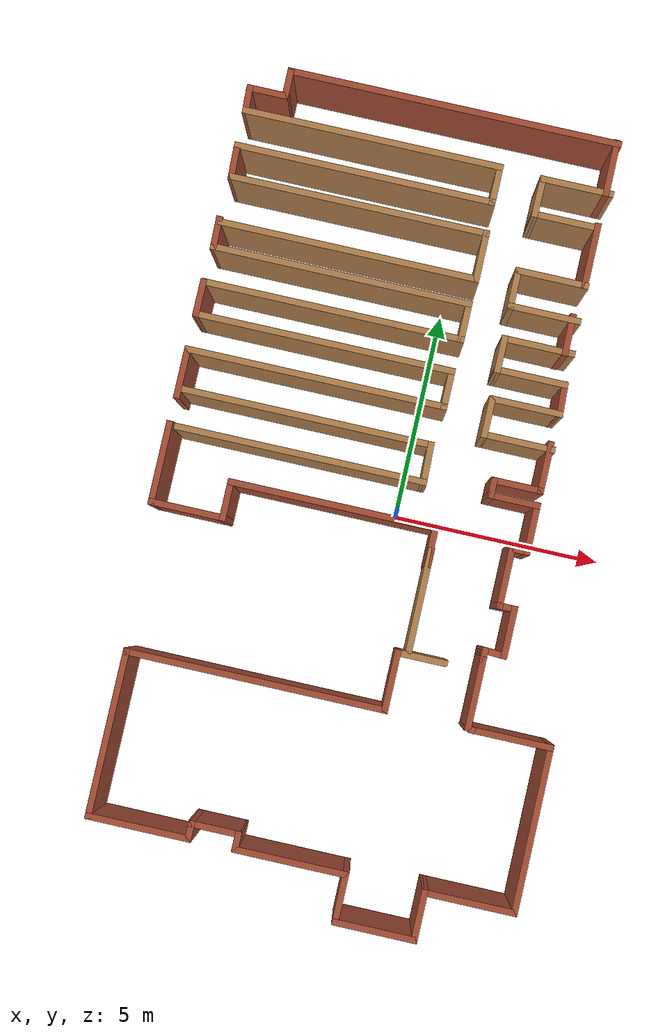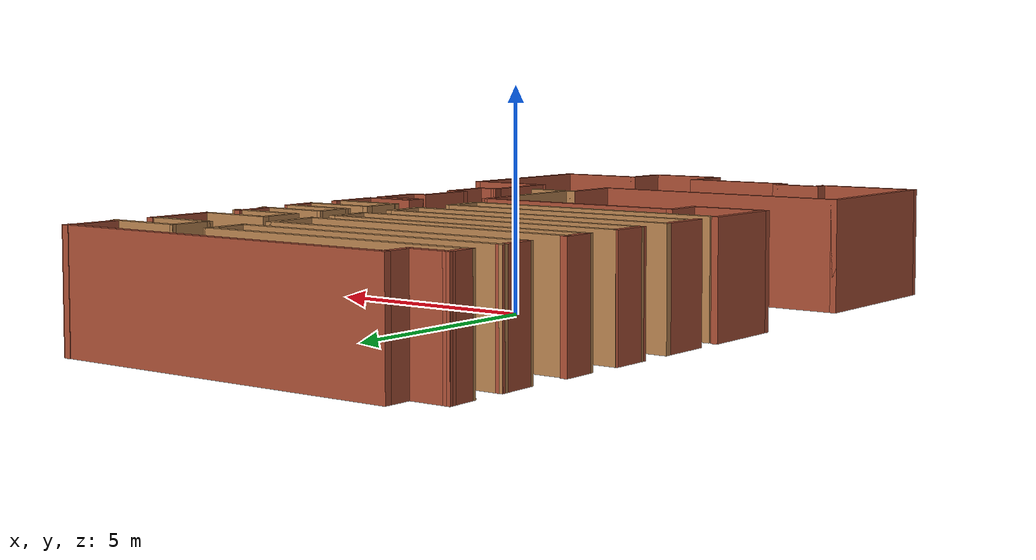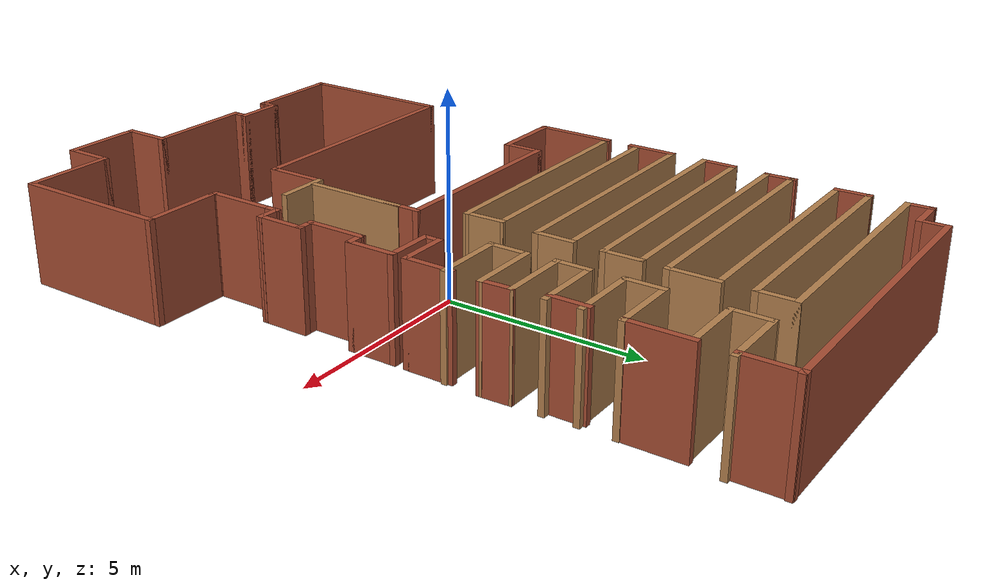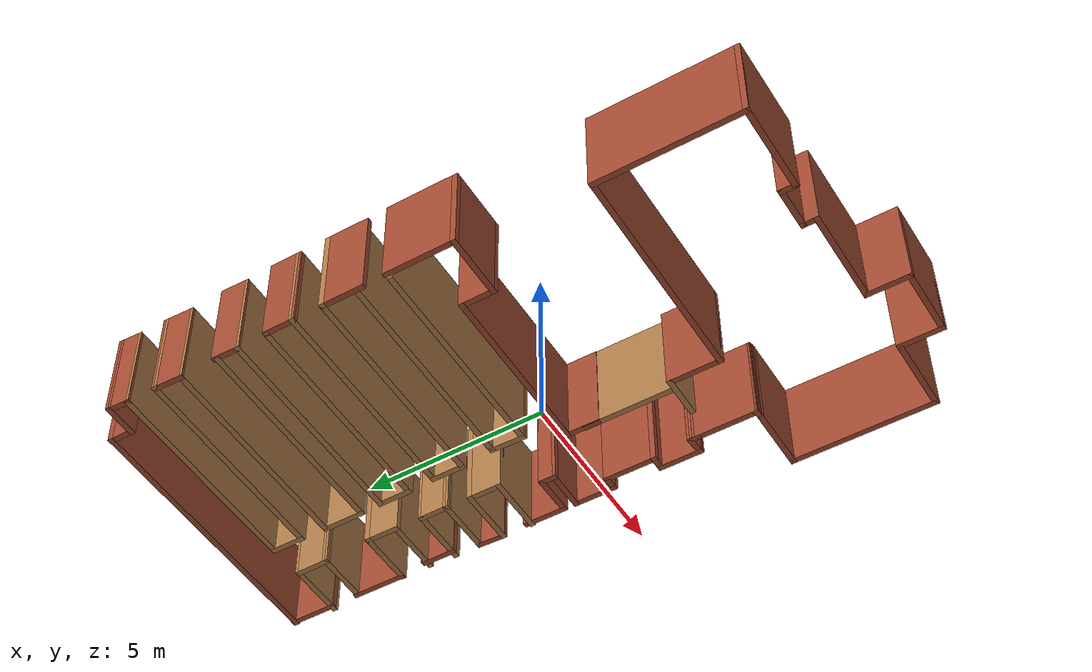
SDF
<?xml version='1.0'?>
<sdf version='1.7'>
  <model name='F1L3'>
    <pose>-0.483748 0.052181 0 0 -0 0</pose>
    <link name='Wall_0'>
      <collision name='Wall_0_Collision'>
        <geometry>
          <box>
            <size>2.5 0.15 2.5</size>
          </box>
        </geometry>
        <pose>0 0 1.25 0 -0 0</pose>
      </collision>
      <visual name='Wall_0_Visual'>
        <pose>0 0 1.25 0 -0 0</pose>
        <geometry>
          <box>
            <size>2.5 0.15 2.5</size>
          </box>
        </geometry>
        <material>
          <script>
            <uri>file://media/materials/scripts/gazebo.material</uri>
            <name>Gazebo/Bricks</name>
          </script>
          <ambient>1 1 1 1</ambient>
        </material>
        <meta>
          <layer>0</layer>
        </meta>
      </visual>
      <pose>-3.71368 -8.40226 0 0 -0 0</pose>
    </link>
    <link name='Wall_10'>
      <collision name='Wall_10_Collision'>
        <geometry>
          <box>
            <size>4 0.15 2.5</size>
          </box>
        </geometry>
        <pose>0 0 1.25 0 -0 0</pose>
      </collision>
      <visual name='Wall_10_Visual'>
        <pose>0 0 1.25 0 -0 0</pose>
        <geometry>
          <box>
            <size>4 0.15 2.5</size>
          </box>
        </geometry>
        <material>
          <script>
            <uri>file://media/materials/scripts/gazebo.material</uri>
            <name>Gazebo/Bricks</name>
          </script>
          <ambient>1 1 1 1</ambient>
        </material>
        <meta>
          <layer>0</layer>
        </meta>
      </visual>
      <pose>5.11132 -6.47726 0 0 -0 1.5708</pose>
    </link>
    <link name='Wall_100'>
      <collision name='Wall_100_Collision'>
        <geometry>
          <box>
            <size>1.75 0.15 2.5</size>
          </box>
        </geometry>
        <pose>0 0 1.25 0 -0 0</pose>
      </collision>
      <visual name='Wall_100_Visual'>
        <pose>0 0 1.25 0 -0 0</pose>
        <geometry>
          <box>
            <size>1.75 0.15 2.5</size>
          </box>
        </geometry>
        <material>
          <script>
            <uri>file://media/materials/scripts/gazebo.material</uri>
            <name>Gazebo/Wood</name>
          </script>
          <ambient>1 1 1 1</ambient>
        </material>
        <meta>
          <layer>0</layer>
        </meta>
      </visual>
      <pose>2.86493 2.15376 0 0 -0 0</pose>
    </link>
    <link name='Wall_102'>
      <collision name='Wall_102_Collision'>
        <geometry>
          <box>
            <size>1.75 0.15 2.5</size>
          </box>
        </geometry>
        <pose>0 0 1.25 0 -0 0</pose>
      </collision>
      <visual name='Wall_102_Visual'>
        <pose>0 0 1.25 0 -0 0</pose>
        <geometry>
          <box>
            <size>1.75 0.15 2.5</size>
          </box>
        </geometry>
        <material>
          <script>
            <uri>file://media/materials/scripts/gazebo.material</uri>
            <name>Gazebo/Wood</name>
          </script>
          <ambient>1 1 1 1</ambient>
        </material>
        <meta>
          <layer>0</layer>
        </meta>
      </visual>
      <pose>2.83833 4.44017 0 0 -0 0</pose>
    </link>
    <link name='Wall_104'>
      <collision name='Wall_104_Collision'>
        <geometry>
          <box>
            <size>1.75 0.15 2.5</size>
          </box>
        </geometry>
        <pose>0 0 1.25 0 -0 0</pose>
      </collision>
      <visual name='Wall_104_Visual'>
        <pose>0 0 1.25 0 -0 0</pose>
        <geometry>
          <box>
            <size>1.75 0.15 2.5</size>
          </box>
        </geometry>
        <material>
          <script>
            <uri>file://media/materials/scripts/gazebo.material</uri>
            <name>Gazebo/Wood</name>
          </script>
          <ambient>1 1 1 1</ambient>
        </material>
        <meta>
          <layer>0</layer>
        </meta>
      </visual>
      <pose>2.83434 3.69537 0 0 -0 3.14159</pose>
    </link>
    <link name='Wall_105'>
      <collision name='Wall_105_Collision'>
        <geometry>
          <box>
            <size>0.894816 0.15 2.5</size>
          </box>
        </geometry>
        <pose>0 0 1.25 0 -0 0</pose>
      </collision>
      <visual name='Wall_105_Visual'>
        <pose>0 0 1.25 0 -0 0</pose>
        <geometry>
          <box>
            <size>0.894816 0.15 2.5</size>
          </box>
        </geometry>
        <material>
          <script>
            <uri>file://media/materials/scripts/gazebo.material</uri>
            <name>Gazebo/Wood</name>
          </script>
          <ambient>1 1 1 1</ambient>
        </material>
        <meta>
          <layer>0</layer>
        </meta>
      </visual>
      <pose>2.03634 4.06777 0 0 -0 1.56544</pose>
    </link>
    <link name='Wall_109'>
      <collision name='Wall_109_Collision'>
        <geometry>
          <box>
            <size>1.75 0.15 2.5</size>
          </box>
        </geometry>
        <pose>0 0 1.25 0 -0 0</pose>
      </collision>
      <visual name='Wall_109_Visual'>
        <pose>0 0 1.25 0 -0 0</pose>
        <geometry>
          <box>
            <size>1.75 0.15 2.5</size>
          </box>
        </geometry>
        <material>
          <script>
            <uri>file://media/materials/scripts/gazebo.material</uri>
            <name>Gazebo/Wood</name>
          </script>
          <ambient>1 1 1 1</ambient>
        </material>
        <meta>
          <layer>0</layer>
        </meta>
      </visual>
      <pose>2.80774 6.06279 0 0 -0 3.14159</pose>
    </link>
    <link name='Wall_11'>
      <collision name='Wall_11_Collision'>
        <geometry>
          <box>
            <size>2 0.15 2.5</size>
          </box>
        </geometry>
        <pose>0 0 1.25 0 -0 0</pose>
      </collision>
      <visual name='Wall_11_Visual'>
        <pose>0 0 1.25 0 -0 0</pose>
        <geometry>
          <box>
            <size>2 0.15 2.5</size>
          </box>
        </geometry>
        <material>
          <script>
            <uri>file://media/materials/scripts/gazebo.material</uri>
            <name>Gazebo/Bricks</name>
          </script>
          <ambient>1 1 1 1</ambient>
        </material>
        <meta>
          <layer>0</layer>
        </meta>
      </visual>
      <pose>4.18632 -4.55226 0 0 -0 3.14159</pose>
    </link>
    <link name='Wall_110'>
      <collision name='Wall_110_Collision'>
        <geometry>
          <box>
            <size>1 0.15 2.5</size>
          </box>
        </geometry>
        <pose>0 0 1.25 0 -0 0</pose>
      </collision>
      <visual name='Wall_110_Visual'>
        <pose>0 0 1.25 0 -0 0</pose>
        <geometry>
          <box>
            <size>1 0.15 2.5</size>
          </box>
        </geometry>
        <material>
          <script>
            <uri>file://media/materials/scripts/gazebo.material</uri>
            <name>Gazebo/Wood</name>
          </script>
          <ambient>1 1 1 1</ambient>
        </material>
        <meta>
          <layer>0</layer>
        </meta>
      </visual>
      <pose>2.00774 5.63779 0 0 -0 -1.5708</pose>
    </link>
    <link name='Wall_111'>
      <collision name='Wall_111_Collision'>
        <geometry>
          <box>
            <size>1.75 0.15 2.5</size>
          </box>
        </geometry>
        <pose>0 0 1.25 0 -0 0</pose>
      </collision>
      <visual name='Wall_111_Visual'>
        <pose>0 0 1.25 0 -0 0</pose>
        <geometry>
          <box>
            <size>1.75 0.15 2.5</size>
          </box>
        </geometry>
        <material>
          <script>
            <uri>file://media/materials/scripts/gazebo.material</uri>
            <name>Gazebo/Wood</name>
          </script>
          <ambient>1 1 1 1</ambient>
        </material>
        <meta>
          <layer>0</layer>
        </meta>
      </visual>
      <pose>2.80774 5.21279 0 0 -0 0</pose>
    </link>
    <link name='Wall_114'>
      <collision name='Wall_114_Collision'>
        <geometry>
          <box>
            <size>2 0.15 2.5</size>
          </box>
        </geometry>
        <pose>0 0 1.25 0 -0 0</pose>
      </collision>
      <visual name='Wall_114_Visual'>
        <pose>0 0 1.25 0 -0 0</pose>
        <geometry>
          <box>
            <size>2 0.15 2.5</size>
          </box>
        </geometry>
        <material>
          <script>
            <uri>file://media/materials/scripts/gazebo.material</uri>
            <name>Gazebo/Bricks</name>
          </script>
          <ambient>1 1 1 1</ambient>
        </material>
        <meta>
          <layer>0</layer>
        </meta>
      </visual>
      <pose>-5.11132 -0.137543 0 0 -0 1.5708</pose>
    </link>
    <link name='Wall_116'>
      <collision name='Wall_116_Collision'>
        <geometry>
          <box>
            <size>1.25 0.15 2.5</size>
          </box>
        </geometry>
        <pose>0 0 1.25 0 -0 0</pose>
      </collision>
      <visual name='Wall_116_Visual'>
        <pose>0 0 1.25 0 -0 0</pose>
        <geometry>
          <box>
            <size>1.25 0.15 2.5</size>
          </box>
        </geometry>
        <material>
          <script>
            <uri>file://media/materials/scripts/gazebo.material</uri>
            <name>Gazebo/Bricks</name>
          </script>
          <ambient>1 1 1 1</ambient>
        </material>
        <meta>
          <layer>0</layer>
        </meta>
      </visual>
      <pose>-5.09052 2.02937 0 0 -0 -1.5708</pose>
    </link>
    <link name='Wall_119'>
      <collision name='Wall_119_Collision'>
        <geometry>
          <box>
            <size>0.91051 0.15 2.5</size>
          </box>
        </geometry>
        <pose>0 0 1.25 0 -0 0</pose>
      </collision>
      <visual name='Wall_119_Visual'>
        <pose>0 0 1.25 0 -0 0</pose>
        <geometry>
          <box>
            <size>0.91051 0.15 2.5</size>
          </box>
        </geometry>
        <material>
          <script>
            <uri>file://media/materials/scripts/gazebo.material</uri>
            <name>Gazebo/Bricks</name>
          </script>
          <ambient>1 1 1 1</ambient>
        </material>
        <meta>
          <layer>0</layer>
        </meta>
      </visual>
      <pose>-5.08843 3.80946 0 0 -0 1.56528</pose>
    </link>
    <link name='Wall_12'>
      <collision name='Wall_12_Collision'>
        <geometry>
          <box>
            <size>0.25 0.15 2.5</size>
          </box>
        </geometry>
        <pose>0 0 1.25 0 -0 0</pose>
      </collision>
      <visual name='Wall_12_Visual'>
        <pose>0 0 1.25 0 -0 0</pose>
        <geometry>
          <box>
            <size>0.25 0.15 2.5</size>
          </box>
        </geometry>
        <material>
          <script>
            <uri>file://media/materials/scripts/gazebo.material</uri>
            <name>Gazebo/Bricks</name>
          </script>
          <ambient>1 1 1 1</ambient>
        </material>
        <meta>
          <layer>0</layer>
        </meta>
      </visual>
      <pose>3.21303 -4.53932 0 0 -0 2.87979</pose>
    </link>
    <link name='Wall_121'>
      <collision name='Wall_121_Collision'>
        <geometry>
          <box>
            <size>0.803926 0.15 2.5</size>
          </box>
        </geometry>
        <pose>0 0 1.25 0 -0 0</pose>
      </collision>
      <visual name='Wall_121_Visual'>
        <pose>0 0 1.25 0 -0 0</pose>
        <geometry>
          <box>
            <size>0.803926 0.15 2.5</size>
          </box>
        </geometry>
        <material>
          <script>
            <uri>file://media/materials/scripts/gazebo.material</uri>
            <name>Gazebo/Bricks</name>
          </script>
          <ambient>1 1 1 1</ambient>
        </material>
        <meta>
          <layer>0</layer>
        </meta>
      </visual>
      <pose>-5.05281 5.37887 0 0 -0 1.59198</pose>
    </link>
    <link name='Wall_123'>
      <collision name='Wall_123_Collision'>
        <geometry>
          <box>
            <size>0.896486 0.15 2.5</size>
          </box>
        </geometry>
        <pose>0 0 1.25 0 -0 0</pose>
      </collision>
      <visual name='Wall_123_Visual'>
        <pose>0 0 1.25 0 -0 0</pose>
        <geometry>
          <box>
            <size>0.896486 0.15 2.5</size>
          </box>
        </geometry>
        <material>
          <script>
            <uri>file://media/materials/scripts/gazebo.material</uri>
            <name>Gazebo/Bricks</name>
          </script>
          <ambient>1 1 1 1</ambient>
        </material>
        <meta>
          <layer>0</layer>
        </meta>
      </visual>
      <pose>-5.02402 7.1274 0 0 -0 1.60644</pose>
    </link>
    <link name='Wall_125'>
      <collision name='Wall_125_Collision'>
        <geometry>
          <box>
            <size>0.687455 0.15 2.5</size>
          </box>
        </geometry>
        <pose>0 0 1.25 0 -0 0</pose>
      </collision>
      <visual name='Wall_125_Visual'>
        <pose>0 0 1.25 0 -0 0</pose>
        <geometry>
          <box>
            <size>0.687455 0.15 2.5</size>
          </box>
        </geometry>
        <material>
          <script>
            <uri>file://media/materials/scripts/gazebo.material</uri>
            <name>Gazebo/Bricks</name>
          </script>
          <ambient>1 1 1 1</ambient>
        </material>
        <meta>
          <layer>0</layer>
        </meta>
      </visual>
      <pose>-5.04772 8.61893 0 0 -0 1.60951</pose>
    </link>
    <link name='Wall_127'>
      <collision name='Wall_127_Collision'>
        <geometry>
          <box>
            <size>0.842281 0.15 2.5</size>
          </box>
        </geometry>
        <pose>0 0 1.25 0 -0 0</pose>
      </collision>
      <visual name='Wall_127_Visual'>
        <pose>0 0 1.25 0 -0 0</pose>
        <geometry>
          <box>
            <size>0.842281 0.15 2.5</size>
          </box>
        </geometry>
        <material>
          <script>
            <uri>file://media/materials/scripts/gazebo.material</uri>
            <name>Gazebo/Bricks</name>
          </script>
          <ambient>1 1 1 1</ambient>
        </material>
        <meta>
          <layer>0</layer>
        </meta>
      </visual>
      <pose>3.64964 3.34957 0 0 -0 1.61499</pose>
    </link>
    <link name='Wall_129'>
      <collision name='Wall_129_Collision'>
        <geometry>
          <box>
            <size>1.00121 0.15 2.5</size>
          </box>
        </geometry>
        <pose>0 0 1.25 0 -0 0</pose>
      </collision>
      <visual name='Wall_129_Visual'>
        <pose>0 0 1.25 0 -0 0</pose>
        <geometry>
          <box>
            <size>1.00121 0.15 2.5</size>
          </box>
        </geometry>
        <material>
          <script>
            <uri>file://media/materials/scripts/gazebo.material</uri>
            <name>Gazebo/Bricks</name>
          </script>
          <ambient>1 1 1 1</ambient>
        </material>
        <meta>
          <layer>0</layer>
        </meta>
      </visual>
      <pose>3.47893 4.85455 0 0 -0 1.5708</pose>
    </link>
    <link name='Wall_13'>
      <collision name='Wall_13_Collision'>
        <geometry>
          <box>
            <size>1.75 0.15 2.5</size>
          </box>
        </geometry>
        <pose>0 0 1.25 0 -0 0</pose>
      </collision>
      <visual name='Wall_13_Visual'>
        <pose>0 0 1.25 0 -0 0</pose>
        <geometry>
          <box>
            <size>1.75 0.15 2.5</size>
          </box>
        </geometry>
        <material>
          <script>
            <uri>file://media/materials/scripts/gazebo.material</uri>
            <name>Gazebo/Bricks</name>
          </script>
          <ambient>1 1 1 1</ambient>
        </material>
        <meta>
          <layer>0</layer>
        </meta>
      </visual>
      <pose>3.16473 -3.72637 0 0 -0 1.5708</pose>
    </link>
    <link name='Wall_131'>
      <collision name='Wall_131_Collision'>
        <geometry>
          <box>
            <size>1.55981 0.15 2.5</size>
          </box>
        </geometry>
        <pose>0 0 1.25 0 -0 0</pose>
      </collision>
      <visual name='Wall_131_Visual'>
        <pose>0 0 1.25 0 -0 0</pose>
        <geometry>
          <box>
            <size>1.55981 0.15 2.5</size>
          </box>
        </geometry>
        <material>
          <script>
            <uri>file://media/materials/scripts/gazebo.material</uri>
            <name>Gazebo/Bricks</name>
          </script>
          <ambient>1 1 1 1</ambient>
        </material>
        <meta>
          <layer>0</layer>
        </meta>
      </visual>
      <pose>3.58533 6.78307 0 0 -0 1.5708</pose>
    </link>
    <link name='Wall_135'>
      <collision name='Wall_135_Collision'>
        <geometry>
          <box>
            <size>1.35681 0.15 2.5</size>
          </box>
        </geometry>
        <pose>0 0 1.25 0 -0 0</pose>
      </collision>
      <visual name='Wall_135_Visual'>
        <pose>0 0 1.25 0 -0 0</pose>
        <geometry>
          <box>
            <size>1.35681 0.15 2.5</size>
          </box>
        </geometry>
        <material>
          <script>
            <uri>file://media/materials/scripts/gazebo.material</uri>
            <name>Gazebo/Bricks</name>
          </script>
          <ambient>1 1 1 1</ambient>
        </material>
        <meta>
          <layer>0</layer>
        </meta>
      </visual>
      <pose>3.60505 8.89885 0 0 -0 1.5708</pose>
    </link>
    <link name='Wall_14'>
      <collision name='Wall_14_Collision'>
        <geometry>
          <box>
            <size>0.361216 0.15 2.5</size>
          </box>
        </geometry>
        <pose>0 0 1.25 0 -0 0</pose>
      </collision>
      <visual name='Wall_14_Visual'>
        <pose>0 0 1.25 0 -0 0</pose>
        <geometry>
          <box>
            <size>0.361216 0.15 2.5</size>
          </box>
        </geometry>
        <material>
          <script>
            <uri>file://media/materials/scripts/gazebo.material</uri>
            <name>Gazebo/Bricks</name>
          </script>
          <ambient>1 1 1 1</ambient>
        </material>
        <meta>
          <layer>0</layer>
        </meta>
      </visual>
      <pose>3.16473 -2.82077 0 0 -0 1.5708</pose>
    </link>
    <link name='Wall_2'>
      <collision name='Wall_2_Collision'>
        <geometry>
          <box>
            <size>0.5 0.15 2.5</size>
          </box>
        </geometry>
        <pose>0 0 1.25 0 -0 0</pose>
      </collision>
      <visual name='Wall_2_Visual'>
        <pose>0 0 1.25 0 -0 0</pose>
        <geometry>
          <box>
            <size>0.5 0.15 2.5</size>
          </box>
        </geometry>
        <material>
          <script>
            <uri>file://media/materials/scripts/gazebo.material</uri>
            <name>Gazebo/Bricks</name>
          </script>
          <ambient>1 1 1 1</ambient>
        </material>
        <meta>
          <layer>0</layer>
        </meta>
      </visual>
      <pose>-2.53868 -8.22726 0 0 -0 1.5708</pose>
    </link>
    <link name='Wall_20'>
      <collision name='Wall_20_Collision'>
        <geometry>
          <box>
            <size>0.601952 0.15 2.5</size>
          </box>
        </geometry>
        <pose>0 0 1.25 0 -0 0</pose>
      </collision>
      <visual name='Wall_20_Visual'>
        <pose>0 0 1.25 0 -0 0</pose>
        <geometry>
          <box>
            <size>0.601952 0.15 2.5</size>
          </box>
        </geometry>
        <material>
          <script>
            <uri>file://media/materials/scripts/gazebo.material</uri>
            <name>Gazebo/Bricks</name>
          </script>
          <ambient>1 1 1 1</ambient>
        </material>
        <meta>
          <layer>0</layer>
        </meta>
      </visual>
      <pose>3.39048 -2.72521 0 0 -0 3.09709</pose>
    </link>
    <link name='Wall_22'>
      <collision name='Wall_22_Collision'>
        <geometry>
          <box>
            <size>1.25 0.15 2.5</size>
          </box>
        </geometry>
        <pose>0 0 1.25 0 -0 0</pose>
      </collision>
      <visual name='Wall_22_Visual'>
        <pose>0 0 1.25 0 -0 0</pose>
        <geometry>
          <box>
            <size>1.25 0.15 2.5</size>
          </box>
        </geometry>
        <material>
          <script>
            <uri>file://media/materials/scripts/gazebo.material</uri>
            <name>Gazebo/Bricks</name>
          </script>
          <ambient>1 1 1 1</ambient>
        </material>
        <meta>
          <layer>0</layer>
        </meta>
      </visual>
      <pose>3.61624 -2.18526 0 0 -0 -1.5708</pose>
    </link>
    <link name='Wall_24'>
      <collision name='Wall_24_Collision'>
        <geometry>
          <box>
            <size>0.5 0.15 2.5</size>
          </box>
        </geometry>
        <pose>0 0 1.25 0 -0 0</pose>
      </collision>
      <visual name='Wall_24_Visual'>
        <pose>0 0 1.25 0 -0 0</pose>
        <geometry>
          <box>
            <size>0.5 0.15 2.5</size>
          </box>
        </geometry>
        <material>
          <script>
            <uri>file://media/materials/scripts/gazebo.material</uri>
            <name>Gazebo/Bricks</name>
          </script>
          <ambient>1 1 1 1</ambient>
        </material>
        <meta>
          <layer>0</layer>
        </meta>
      </visual>
      <pose>3.44124 -1.63526 0 0 -0 3.14159</pose>
    </link>
    <link name='Wall_25'>
      <collision name='Wall_25_Collision'>
        <geometry>
          <box>
            <size>1.5 0.15 2.5</size>
          </box>
        </geometry>
        <pose>0 0 1.25 0 -0 0</pose>
      </collision>
      <visual name='Wall_25_Visual'>
        <pose>0 0 1.25 0 -0 0</pose>
        <geometry>
          <box>
            <size>1.5 0.15 2.5</size>
          </box>
        </geometry>
        <material>
          <script>
            <uri>file://media/materials/scripts/gazebo.material</uri>
            <name>Gazebo/Bricks</name>
          </script>
          <ambient>1 1 1 1</ambient>
        </material>
        <meta>
          <layer>0</layer>
        </meta>
      </visual>
      <pose>3.26624 -0.960265 0 0 -0 1.5708</pose>
    </link>
    <link name='Wall_26'>
      <collision name='Wall_26_Collision'>
        <geometry>
          <box>
            <size>0.5 0.15 2.5</size>
          </box>
        </geometry>
        <pose>0 0 1.25 0 -0 0</pose>
      </collision>
      <visual name='Wall_26_Visual'>
        <pose>0 0 1.25 0 -0 0</pose>
        <geometry>
          <box>
            <size>0.5 0.15 2.5</size>
          </box>
        </geometry>
        <material>
          <script>
            <uri>file://media/materials/scripts/gazebo.material</uri>
            <name>Gazebo/Bricks</name>
          </script>
          <ambient>1 1 1 1</ambient>
        </material>
        <meta>
          <layer>0</layer>
        </meta>
      </visual>
      <pose>3.44124 -0.285265 0 0 -0 0</pose>
    </link>
    <link name='Wall_27'>
      <collision name='Wall_27_Collision'>
        <geometry>
          <box>
            <size>1.25 0.15 2.5</size>
          </box>
        </geometry>
        <pose>0 0 1.25 0 -0 0</pose>
      </collision>
      <visual name='Wall_27_Visual'>
        <pose>0 0 1.25 0 -0 0</pose>
        <geometry>
          <box>
            <size>1.25 0.15 2.5</size>
          </box>
        </geometry>
        <material>
          <script>
            <uri>file://media/materials/scripts/gazebo.material</uri>
            <name>Gazebo/Bricks</name>
          </script>
          <ambient>1 1 1 1</ambient>
        </material>
        <meta>
          <layer>0</layer>
        </meta>
      </visual>
      <pose>3.61624 0.264735 0 0 -0 1.5708</pose>
    </link>
    <link name='Wall_28'>
      <collision name='Wall_28_Collision'>
        <geometry>
          <box>
            <size>1.25 0.15 2.5</size>
          </box>
        </geometry>
        <pose>0 0 1.25 0 -0 0</pose>
      </collision>
      <visual name='Wall_28_Visual'>
        <pose>0 0 1.25 0 -0 0</pose>
        <geometry>
          <box>
            <size>1.25 0.15 2.5</size>
          </box>
        </geometry>
        <material>
          <script>
            <uri>file://media/materials/scripts/gazebo.material</uri>
            <name>Gazebo/Bricks</name>
          </script>
          <ambient>1 1 1 1</ambient>
        </material>
        <meta>
          <layer>0</layer>
        </meta>
      </visual>
      <pose>3.06624 0.814735 0 0 -0 3.14159</pose>
    </link>
    <link name='Wall_29'>
      <collision name='Wall_29_Collision'>
        <geometry>
          <box>
            <size>0.5 0.15 2.5</size>
          </box>
        </geometry>
        <pose>0 0 1.25 0 -0 0</pose>
      </collision>
      <visual name='Wall_29_Visual'>
        <pose>0 0 1.25 0 -0 0</pose>
        <geometry>
          <box>
            <size>0.5 0.15 2.5</size>
          </box>
        </geometry>
        <material>
          <script>
            <uri>file://media/materials/scripts/gazebo.material</uri>
            <name>Gazebo/Bricks</name>
          </script>
          <ambient>1 1 1 1</ambient>
        </material>
        <meta>
          <layer>0</layer>
        </meta>
      </visual>
      <pose>2.51624 0.989735 0 0 -0 1.5708</pose>
    </link>
    <link name='Wall_3'>
      <collision name='Wall_3_Collision'>
        <geometry>
          <box>
            <size>1.25 0.15 2.5</size>
          </box>
        </geometry>
        <pose>0 0 1.25 0 -0 0</pose>
      </collision>
      <visual name='Wall_3_Visual'>
        <pose>0 0 1.25 0 -0 0</pose>
        <geometry>
          <box>
            <size>1.25 0.15 2.5</size>
          </box>
        </geometry>
        <material>
          <script>
            <uri>file://media/materials/scripts/gazebo.material</uri>
            <name>Gazebo/Bricks</name>
          </script>
          <ambient>1 1 1 1</ambient>
        </material>
        <meta>
          <layer>0</layer>
        </meta>
      </visual>
      <pose>-1.98868 -8.05226 0 0 -0 0</pose>
    </link>
    <link name='Wall_30'>
      <collision name='Wall_30_Collision'>
        <geometry>
          <box>
            <size>1.25 0.15 2.5</size>
          </box>
        </geometry>
        <pose>0 0 1.25 0 -0 0</pose>
      </collision>
      <visual name='Wall_30_Visual'>
        <pose>0 0 1.25 0 -0 0</pose>
        <geometry>
          <box>
            <size>1.25 0.15 2.5</size>
          </box>
        </geometry>
        <material>
          <script>
            <uri>file://media/materials/scripts/gazebo.material</uri>
            <name>Gazebo/Bricks</name>
          </script>
          <ambient>1 1 1 1</ambient>
        </material>
        <meta>
          <layer>0</layer>
        </meta>
      </visual>
      <pose>3.06624 1.16474 0 0 -0 0</pose>
    </link>
    <link name='Wall_31'>
      <collision name='Wall_31_Collision'>
        <geometry>
          <box>
            <size>1.25 0.15 2.5</size>
          </box>
        </geometry>
        <pose>0 0 1.25 0 -0 0</pose>
      </collision>
      <visual name='Wall_31_Visual'>
        <pose>0 0 1.25 0 -0 0</pose>
        <geometry>
          <box>
            <size>1.25 0.15 2.5</size>
          </box>
        </geometry>
        <material>
          <script>
            <uri>file://media/materials/scripts/gazebo.material</uri>
            <name>Gazebo/Bricks</name>
          </script>
          <ambient>1 1 1 1</ambient>
        </material>
        <meta>
          <layer>0</layer>
        </meta>
      </visual>
      <pose>3.61624 1.71474 0 0 -0 1.5708</pose>
    </link>
    <link name='Wall_33'>
      <collision name='Wall_33_Collision'>
        <geometry>
          <box>
            <size>4 0.15 2.5</size>
          </box>
        </geometry>
        <pose>0 0 1.25 0 -0 0</pose>
      </collision>
      <visual name='Wall_33_Visual'>
        <pose>0 0 1.25 0 -0 0</pose>
        <geometry>
          <box>
            <size>4 0.15 2.5</size>
          </box>
        </geometry>
        <material>
          <script>
            <uri>file://media/materials/scripts/gazebo.material</uri>
            <name>Gazebo/Bricks</name>
          </script>
          <ambient>1 1 1 1</ambient>
        </material>
        <meta>
          <layer>0</layer>
        </meta>
      </visual>
      <pose>-4.88868 -6.47726 0 0 -0 1.5708</pose>
    </link>
    <link name='Wall_34'>
      <collision name='Wall_34_Collision'>
        <geometry>
          <box>
            <size>6.25 0.15 2.5</size>
          </box>
        </geometry>
        <pose>0 0 1.25 0 -0 0</pose>
      </collision>
      <visual name='Wall_34_Visual'>
        <pose>0 0 1.25 0 -0 0</pose>
        <geometry>
          <box>
            <size>6.25 0.15 2.5</size>
          </box>
        </geometry>
        <material>
          <script>
            <uri>file://media/materials/scripts/gazebo.material</uri>
            <name>Gazebo/Bricks</name>
          </script>
          <ambient>1 1 1 1</ambient>
        </material>
        <meta>
          <layer>0</layer>
        </meta>
      </visual>
      <pose>-1.83868 -4.55226 0 0 -0 0</pose>
    </link>
    <link name='Wall_35'>
      <collision name='Wall_35_Collision'>
        <geometry>
          <box>
            <size>1.5 0.15 2.5</size>
          </box>
        </geometry>
        <pose>0 0 1.25 0 -0 0</pose>
      </collision>
      <visual name='Wall_35_Visual'>
        <pose>0 0 1.25 0 -0 0</pose>
        <geometry>
          <box>
            <size>1.5 0.15 2.5</size>
          </box>
        </geometry>
        <material>
          <script>
            <uri>file://media/materials/scripts/gazebo.material</uri>
            <name>Gazebo/Bricks</name>
          </script>
          <ambient>1 1 1 1</ambient>
        </material>
        <meta>
          <layer>0</layer>
        </meta>
      </visual>
      <pose>1.21132 -3.87726 0 0 -0 1.5708</pose>
    </link>
    <link name='Wall_36'>
      <collision name='Wall_36_Collision'>
        <geometry>
          <box>
            <size>1.25 0.15 2.5</size>
          </box>
        </geometry>
        <pose>0 0 1.25 0 -0 0</pose>
      </collision>
      <visual name='Wall_36_Visual'>
        <pose>0 0 1.25 0 -0 0</pose>
        <geometry>
          <box>
            <size>1.25 0.15 2.5</size>
          </box>
        </geometry>
        <material>
          <script>
            <uri>file://media/materials/scripts/gazebo.material</uri>
            <name>Gazebo/Wood</name>
          </script>
          <ambient>1 1 1 1</ambient>
        </material>
        <meta>
          <layer>0</layer>
        </meta>
      </visual>
      <pose>1.76132 -3.20226 0 0 -0 0</pose>
    </link>
    <link name='Wall_38'>
      <collision name='Wall_38_Collision'>
        <geometry>
          <box>
            <size>2.5 0.15 2.5</size>
          </box>
        </geometry>
        <pose>0 0 1.25 0 -0 0</pose>
      </collision>
      <visual name='Wall_38_Visual'>
        <pose>0 0 1.25 0 -0 0</pose>
        <geometry>
          <box>
            <size>2.5 0.15 2.5</size>
          </box>
        </geometry>
        <material>
          <script>
            <uri>file://media/materials/scripts/gazebo.material</uri>
            <name>Gazebo/Wood</name>
          </script>
          <ambient>1 1 1 1</ambient>
        </material>
        <meta>
          <layer>0</layer>
        </meta>
      </visual>
      <pose>1.45033 -1.91651 0 0 -0 -1.5708</pose>
    </link>
    <link name='Wall_4'>
      <collision name='Wall_4_Collision'>
        <geometry>
          <box>
            <size>0.5 0.15 2.5</size>
          </box>
        </geometry>
        <pose>0 0 1.25 0 -0 0</pose>
      </collision>
      <visual name='Wall_4_Visual'>
        <pose>0 0 1.25 0 -0 0</pose>
        <geometry>
          <box>
            <size>0.5 0.15 2.5</size>
          </box>
        </geometry>
        <material>
          <script>
            <uri>file://media/materials/scripts/gazebo.material</uri>
            <name>Gazebo/Bricks</name>
          </script>
          <ambient>1 1 1 1</ambient>
        </material>
        <meta>
          <layer>0</layer>
        </meta>
      </visual>
      <pose>-1.43868 -8.22726 0 0 -0 -1.5708</pose>
    </link>
    <link name='Wall_42'>
      <collision name='Wall_42_Collision'>
        <geometry>
          <box>
            <size>8 0.15 2.5</size>
          </box>
        </geometry>
        <pose>0 0 1.25 0 -0 0</pose>
      </collision>
      <visual name='Wall_42_Visual'>
        <pose>0 0 1.25 0 -0 0</pose>
        <geometry>
          <box>
            <size>8 0.15 2.5</size>
          </box>
        </geometry>
        <material>
          <script>
            <uri>file://media/materials/scripts/gazebo.material</uri>
            <name>Gazebo/Bricks</name>
          </script>
          <ambient>1 1 1 1</ambient>
        </material>
        <meta>
          <layer>0</layer>
        </meta>
      </visual>
      <pose>-0.283123 9.48746 0 0 -0 3.14159</pose>
    </link>
    <link name='Wall_43'>
      <collision name='Wall_43_Collision'>
        <geometry>
          <box>
            <size>0.75 0.15 2.5</size>
          </box>
        </geometry>
        <pose>0 0 1.25 0 -0 0</pose>
      </collision>
      <visual name='Wall_43_Visual'>
        <pose>0 0 1.25 0 -0 0</pose>
        <geometry>
          <box>
            <size>0.75 0.15 2.5</size>
          </box>
        </geometry>
        <material>
          <script>
            <uri>file://media/materials/scripts/gazebo.material</uri>
            <name>Gazebo/Bricks</name>
          </script>
          <ambient>1 1 1 1</ambient>
        </material>
        <meta>
          <layer>0</layer>
        </meta>
      </visual>
      <pose>-4.20812 9.18746 0 0 -0 -1.5708</pose>
    </link>
    <link name='Wall_44'>
      <collision name='Wall_44_Collision'>
        <geometry>
          <box>
            <size>1 0.15 2.5</size>
          </box>
        </geometry>
        <pose>0 0 1.25 0 -0 0</pose>
      </collision>
      <visual name='Wall_44_Visual'>
        <pose>0 0 1.25 0 -0 0</pose>
        <geometry>
          <box>
            <size>1 0.15 2.5</size>
          </box>
        </geometry>
        <material>
          <script>
            <uri>file://media/materials/scripts/gazebo.material</uri>
            <name>Gazebo/Bricks</name>
          </script>
          <ambient>1 1 1 1</ambient>
        </material>
        <meta>
          <layer>0</layer>
        </meta>
      </visual>
      <pose>-4.63312 8.88746 0 0 -0 3.14159</pose>
    </link>
    <link name='Wall_49'>
      <collision name='Wall_49_Collision'>
        <geometry>
          <box>
            <size>1.84343 0.15 2.5</size>
          </box>
        </geometry>
        <pose>0 0 1.25 0 -0 0</pose>
      </collision>
      <visual name='Wall_49_Visual'>
        <pose>0 0 1.25 0 -0 0</pose>
        <geometry>
          <box>
            <size>1.84343 0.15 2.5</size>
          </box>
        </geometry>
        <material>
          <script>
            <uri>file://media/materials/scripts/gazebo.material</uri>
            <name>Gazebo/Bricks</name>
          </script>
          <ambient>1 1 1 1</ambient>
        </material>
        <meta>
          <layer>0</layer>
        </meta>
      </visual>
      <pose>-4.26461 -1.06254 0 0 -0 0</pose>
    </link>
    <link name='Wall_5'>
      <collision name='Wall_5_Collision'>
        <geometry>
          <box>
            <size>2.75 0.15 2.5</size>
          </box>
        </geometry>
        <pose>0 0 1.25 0 -0 0</pose>
      </collision>
      <visual name='Wall_5_Visual'>
        <pose>0 0 1.25 0 -0 0</pose>
        <geometry>
          <box>
            <size>2.75 0.15 2.5</size>
          </box>
        </geometry>
        <material>
          <script>
            <uri>file://media/materials/scripts/gazebo.material</uri>
            <name>Gazebo/Bricks</name>
          </script>
          <ambient>1 1 1 1</ambient>
        </material>
        <meta>
          <layer>0</layer>
        </meta>
      </visual>
      <pose>-0.138677 -8.40226 0 0 -0 0</pose>
    </link>
    <link name='Wall_54'>
      <collision name='Wall_54_Collision'>
        <geometry>
          <box>
            <size>1 0.15 2.5</size>
          </box>
        </geometry>
        <pose>0 0 1.25 0 -0 0</pose>
      </collision>
      <visual name='Wall_54_Visual'>
        <pose>0 0 1.25 0 -0 0</pose>
        <geometry>
          <box>
            <size>1 0.15 2.5</size>
          </box>
        </geometry>
        <material>
          <script>
            <uri>file://media/materials/scripts/gazebo.material</uri>
            <name>Gazebo/Bricks</name>
          </script>
          <ambient>1 1 1 1</ambient>
        </material>
        <meta>
          <layer>0</layer>
        </meta>
      </visual>
      <pose>-3.4179 -0.637543 0 0 -0 1.5708</pose>
    </link>
    <link name='Wall_55'>
      <collision name='Wall_55_Collision'>
        <geometry>
          <box>
            <size>5 0.15 2.5</size>
          </box>
        </geometry>
        <pose>0 0 1.25 0 -0 0</pose>
      </collision>
      <visual name='Wall_55_Visual'>
        <pose>0 0 1.25 0 -0 0</pose>
        <geometry>
          <box>
            <size>5 0.15 2.5</size>
          </box>
        </geometry>
        <material>
          <script>
            <uri>file://media/materials/scripts/gazebo.material</uri>
            <name>Gazebo/Bricks</name>
          </script>
          <ambient>1 1 1 1</ambient>
        </material>
        <meta>
          <layer>0</layer>
        </meta>
      </visual>
      <pose>-0.992896 -0.212543 0 0 -0 0</pose>
    </link>
    <link name='Wall_56'>
      <collision name='Wall_56_Collision'>
        <geometry>
          <box>
            <size>1 0.15 2.5</size>
          </box>
        </geometry>
        <pose>0 0 1.25 0 -0 0</pose>
      </collision>
      <visual name='Wall_56_Visual'>
        <pose>0 0 1.25 0 -0 0</pose>
        <geometry>
          <box>
            <size>1 0.15 2.5</size>
          </box>
        </geometry>
        <material>
          <script>
            <uri>file://media/materials/scripts/gazebo.material</uri>
            <name>Gazebo/Bricks</name>
          </script>
          <ambient>1 1 1 1</ambient>
        </material>
        <meta>
          <layer>0</layer>
        </meta>
      </visual>
      <pose>1.4321 -0.637543 0 0 -0 -1.5708</pose>
    </link>
    <link name='Wall_6'>
      <collision name='Wall_6_Collision'>
        <geometry>
          <box>
            <size>1.25 0.15 2.5</size>
          </box>
        </geometry>
        <pose>0 0 1.25 0 -0 0</pose>
      </collision>
      <visual name='Wall_6_Visual'>
        <pose>0 0 1.25 0 -0 0</pose>
        <geometry>
          <box>
            <size>1.25 0.15 2.5</size>
          </box>
        </geometry>
        <material>
          <script>
            <uri>file://media/materials/scripts/gazebo.material</uri>
            <name>Gazebo/Bricks</name>
          </script>
          <ambient>1 1 1 1</ambient>
        </material>
        <meta>
          <layer>0</layer>
        </meta>
      </visual>
      <pose>1.16132 -8.95226 0 0 -0 -1.5708</pose>
    </link>
    <link name='Wall_63'>
      <collision name='Wall_63_Collision'>
        <geometry>
          <box>
            <size>6 0.15 2.5</size>
          </box>
        </geometry>
        <pose>0 0 1.25 0 -0 0</pose>
      </collision>
      <visual name='Wall_63_Visual'>
        <pose>0 0 1.25 0 -0 0</pose>
        <geometry>
          <box>
            <size>6 0.15 2.5</size>
          </box>
        </geometry>
        <material>
          <script>
            <uri>file://media/materials/scripts/gazebo.material</uri>
            <name>Gazebo/Wood</name>
          </script>
          <ambient>1 1 1 1</ambient>
        </material>
        <meta>
          <layer>0</layer>
        </meta>
      </visual>
      <pose>-1.99006 0.768439 0 0 -0 3.14159</pose>
    </link>
    <link name='Wall_65'>
      <collision name='Wall_65_Collision'>
        <geometry>
          <box>
            <size>6 0.15 2.5</size>
          </box>
        </geometry>
        <pose>0 0 1.25 0 -0 0</pose>
      </collision>
      <visual name='Wall_65_Visual'>
        <pose>0 0 1.25 0 -0 0</pose>
        <geometry>
          <box>
            <size>6 0.15 2.5</size>
          </box>
        </geometry>
        <material>
          <script>
            <uri>file://media/materials/scripts/gazebo.material</uri>
            <name>Gazebo/Wood</name>
          </script>
          <ambient>1 1 1 1</ambient>
        </material>
        <meta>
          <layer>0</layer>
        </meta>
      </visual>
      <pose>-2.01666 1.64624 0 0 -0 3.14159</pose>
    </link>
    <link name='Wall_67'>
      <collision name='Wall_67_Collision'>
        <geometry>
          <box>
            <size>1.02821 0.15 2.5</size>
          </box>
        </geometry>
        <pose>0 0 1.25 0 -0 0</pose>
      </collision>
      <visual name='Wall_67_Visual'>
        <pose>0 0 1.25 0 -0 0</pose>
        <geometry>
          <box>
            <size>1.02821 0.15 2.5</size>
          </box>
        </geometry>
        <material>
          <script>
            <uri>file://media/materials/scripts/gazebo.material</uri>
            <name>Gazebo/Wood</name>
          </script>
          <ambient>1 1 1 1</ambient>
        </material>
        <meta>
          <layer>0</layer>
        </meta>
      </visual>
      <pose>0.921636 1.20734 0 0 -0 -1.5405</pose>
    </link>
    <link name='Wall_7'>
      <collision name='Wall_7_Collision'>
        <geometry>
          <box>
            <size>2 0.15 2.5</size>
          </box>
        </geometry>
        <pose>0 0 1.25 0 -0 0</pose>
      </collision>
      <visual name='Wall_7_Visual'>
        <pose>0 0 1.25 0 -0 0</pose>
        <geometry>
          <box>
            <size>2 0.15 2.5</size>
          </box>
        </geometry>
        <material>
          <script>
            <uri>file://media/materials/scripts/gazebo.material</uri>
            <name>Gazebo/Bricks</name>
          </script>
          <ambient>1 1 1 1</ambient>
        </material>
        <meta>
          <layer>0</layer>
        </meta>
      </visual>
      <pose>2.08632 -9.50226 0 0 -0 0</pose>
    </link>
    <link name='Wall_74'>
      <collision name='Wall_74_Collision'>
        <geometry>
          <box>
            <size>6.25 0.15 2.5</size>
          </box>
        </geometry>
        <pose>0 0 1.25 0 -0 0</pose>
      </collision>
      <visual name='Wall_74_Visual'>
        <pose>0 0 1.25 0 -0 0</pose>
        <geometry>
          <box>
            <size>6.25 0.15 2.5</size>
          </box>
        </geometry>
        <material>
          <script>
            <uri>file://media/materials/scripts/gazebo.material</uri>
            <name>Gazebo/Wood</name>
          </script>
          <ambient>1 1 1 1</ambient>
        </material>
        <meta>
          <layer>0</layer>
        </meta>
      </visual>
      <pose>-1.98732 8.3504 0 0 -0 0</pose>
    </link>
    <link name='Wall_75'>
      <collision name='Wall_75_Collision'>
        <geometry>
          <box>
            <size>1 0.15 2.5</size>
          </box>
        </geometry>
        <pose>0 0 1.25 0 -0 0</pose>
      </collision>
      <visual name='Wall_75_Visual'>
        <pose>0 0 1.25 0 -0 0</pose>
        <geometry>
          <box>
            <size>1 0.15 2.5</size>
          </box>
        </geometry>
        <material>
          <script>
            <uri>file://media/materials/scripts/gazebo.material</uri>
            <name>Gazebo/Wood</name>
          </script>
          <ambient>1 1 1 1</ambient>
        </material>
        <meta>
          <layer>0</layer>
        </meta>
      </visual>
      <pose>1.06268 7.9254 0 0 -0 -1.5708</pose>
    </link>
    <link name='Wall_76'>
      <collision name='Wall_76_Collision'>
        <geometry>
          <box>
            <size>6.25 0.15 2.5</size>
          </box>
        </geometry>
        <pose>0 0 1.25 0 -0 0</pose>
      </collision>
      <visual name='Wall_76_Visual'>
        <pose>0 0 1.25 0 -0 0</pose>
        <geometry>
          <box>
            <size>6.25 0.15 2.5</size>
          </box>
        </geometry>
        <material>
          <script>
            <uri>file://media/materials/scripts/gazebo.material</uri>
            <name>Gazebo/Wood</name>
          </script>
          <ambient>1 1 1 1</ambient>
        </material>
        <meta>
          <layer>0</layer>
        </meta>
      </visual>
      <pose>-1.98732 7.5004 0 0 -0 3.14159</pose>
    </link>
    <link name='Wall_78'>
      <collision name='Wall_78_Collision'>
        <geometry>
          <box>
            <size>1.75823 0.15 2.5</size>
          </box>
        </geometry>
        <pose>0 0 1.25 0 -0 0</pose>
      </collision>
      <visual name='Wall_78_Visual'>
        <pose>0 0 1.25 0 -0 0</pose>
        <geometry>
          <box>
            <size>1.75823 0.15 2.5</size>
          </box>
        </geometry>
        <material>
          <script>
            <uri>file://media/materials/scripts/gazebo.material</uri>
            <name>Gazebo/Wood</name>
          </script>
          <ambient>1 1 1 1</ambient>
        </material>
        <meta>
          <layer>0</layer>
        </meta>
      </visual>
      <pose>2.90496 8.29632 0 0 -0 0.001095</pose>
    </link>
    <link name='Wall_8'>
      <collision name='Wall_8_Collision'>
        <geometry>
          <box>
            <size>1.25 0.15 2.5</size>
          </box>
        </geometry>
        <pose>0 0 1.25 0 -0 0</pose>
      </collision>
      <visual name='Wall_8_Visual'>
        <pose>0 0 1.25 0 -0 0</pose>
        <geometry>
          <box>
            <size>1.25 0.15 2.5</size>
          </box>
        </geometry>
        <material>
          <script>
            <uri>file://media/materials/scripts/gazebo.material</uri>
            <name>Gazebo/Bricks</name>
          </script>
          <ambient>1 1 1 1</ambient>
        </material>
        <meta>
          <layer>0</layer>
        </meta>
      </visual>
      <pose>3.01132 -8.95226 0 0 -0 1.5708</pose>
    </link>
    <link name='Wall_80'>
      <collision name='Wall_80_Collision'>
        <geometry>
          <box>
            <size>0.998291 0.15 2.5</size>
          </box>
        </geometry>
        <pose>0 0 1.25 0 -0 0</pose>
      </collision>
      <visual name='Wall_80_Visual'>
        <pose>0 0 1.25 0 -0 0</pose>
        <geometry>
          <box>
            <size>0.998291 0.15 2.5</size>
          </box>
        </geometry>
        <material>
          <script>
            <uri>file://media/materials/scripts/gazebo.material</uri>
            <name>Gazebo/Wood</name>
          </script>
          <ambient>1 1 1 1</ambient>
        </material>
        <meta>
          <layer>0</layer>
        </meta>
      </visual>
      <pose>2.09622 7.87132 0 0 -0 -1.58185</pose>
    </link>
    <link name='Wall_81'>
      <collision name='Wall_81_Collision'>
        <geometry>
          <box>
            <size>1.5 0.15 2.5</size>
          </box>
        </geometry>
        <pose>0 0 1.25 0 -0 0</pose>
      </collision>
      <visual name='Wall_81_Visual'>
        <pose>0 0 1.25 0 -0 0</pose>
        <geometry>
          <box>
            <size>1.5 0.15 2.5</size>
          </box>
        </geometry>
        <material>
          <script>
            <uri>file://media/materials/scripts/gazebo.material</uri>
            <name>Gazebo/Wood</name>
          </script>
          <ambient>1 1 1 1</ambient>
        </material>
        <meta>
          <layer>0</layer>
        </meta>
      </visual>
      <pose>2.76653 7.4472 0 0 -0 0</pose>
    </link>
    <link name='Wall_83'>
      <collision name='Wall_83_Collision'>
        <geometry>
          <box>
            <size>6.25 0.15 2.5</size>
          </box>
        </geometry>
        <pose>0 0 1.25 0 -0 0</pose>
      </collision>
      <visual name='Wall_83_Visual'>
        <pose>0 0 1.25 0 -0 0</pose>
        <geometry>
          <box>
            <size>6.25 0.15 2.5</size>
          </box>
        </geometry>
        <material>
          <script>
            <uri>file://media/materials/scripts/gazebo.material</uri>
            <name>Gazebo/Wood</name>
          </script>
          <ambient>1 1 1 1</ambient>
        </material>
        <meta>
          <layer>0</layer>
        </meta>
      </visual>
      <pose>-1.96072 6.75439 0 0 -0 0</pose>
    </link>
    <link name='Wall_84'>
      <collision name='Wall_84_Collision'>
        <geometry>
          <box>
            <size>1.25 0.15 2.5</size>
          </box>
        </geometry>
        <pose>0 0 1.25 0 -0 0</pose>
      </collision>
      <visual name='Wall_84_Visual'>
        <pose>0 0 1.25 0 -0 0</pose>
        <geometry>
          <box>
            <size>1.25 0.15 2.5</size>
          </box>
        </geometry>
        <material>
          <script>
            <uri>file://media/materials/scripts/gazebo.material</uri>
            <name>Gazebo/Wood</name>
          </script>
          <ambient>1 1 1 1</ambient>
        </material>
        <meta>
          <layer>0</layer>
        </meta>
      </visual>
      <pose>1.08928 6.20439 0 0 -0 -1.5708</pose>
    </link>
    <link name='Wall_85'>
      <collision name='Wall_85_Collision'>
        <geometry>
          <box>
            <size>6.25 0.15 2.5</size>
          </box>
        </geometry>
        <pose>0 0 1.25 0 -0 0</pose>
      </collision>
      <visual name='Wall_85_Visual'>
        <pose>0 0 1.25 0 -0 0</pose>
        <geometry>
          <box>
            <size>6.25 0.15 2.5</size>
          </box>
        </geometry>
        <material>
          <script>
            <uri>file://media/materials/scripts/gazebo.material</uri>
            <name>Gazebo/Wood</name>
          </script>
          <ambient>1 1 1 1</ambient>
        </material>
        <meta>
          <layer>0</layer>
        </meta>
      </visual>
      <pose>-1.96072 5.65439 0 0 -0 3.14159</pose>
    </link>
    <link name='Wall_87'>
      <collision name='Wall_87_Collision'>
        <geometry>
          <box>
            <size>6.25 0.15 2.5</size>
          </box>
        </geometry>
        <pose>0 0 1.25 0 -0 0</pose>
      </collision>
      <visual name='Wall_87_Visual'>
        <pose>0 0 1.25 0 -0 0</pose>
        <geometry>
          <box>
            <size>6.25 0.15 2.5</size>
          </box>
        </geometry>
        <material>
          <script>
            <uri>file://media/materials/scripts/gazebo.material</uri>
            <name>Gazebo/Wood</name>
          </script>
          <ambient>1 1 1 1</ambient>
        </material>
        <meta>
          <layer>0</layer>
        </meta>
      </visual>
      <pose>-1.99588 5.05198 0 0 -0 3.14159</pose>
    </link>
    <link name='Wall_89'>
      <collision name='Wall_89_Collision'>
        <geometry>
          <box>
            <size>1 0.15 2.5</size>
          </box>
        </geometry>
        <pose>0 0 1.25 0 -0 0</pose>
      </collision>
      <visual name='Wall_89_Visual'>
        <pose>0 0 1.25 0 -0 0</pose>
        <geometry>
          <box>
            <size>1 0.15 2.5</size>
          </box>
        </geometry>
        <material>
          <script>
            <uri>file://media/materials/scripts/gazebo.material</uri>
            <name>Gazebo/Wood</name>
          </script>
          <ambient>1 1 1 1</ambient>
        </material>
        <meta>
          <layer>0</layer>
        </meta>
      </visual>
      <pose>1.05412 4.62698 0 0 -0 -1.5708</pose>
    </link>
    <link name='Wall_9'>
      <collision name='Wall_9_Collision'>
        <geometry>
          <box>
            <size>2.25 0.15 2.5</size>
          </box>
        </geometry>
        <pose>0 0 1.25 0 -0 0</pose>
      </collision>
      <visual name='Wall_9_Visual'>
        <pose>0 0 1.25 0 -0 0</pose>
        <geometry>
          <box>
            <size>2.25 0.15 2.5</size>
          </box>
        </geometry>
        <material>
          <script>
            <uri>file://media/materials/scripts/gazebo.material</uri>
            <name>Gazebo/Bricks</name>
          </script>
          <ambient>1 1 1 1</ambient>
        </material>
        <meta>
          <layer>0</layer>
        </meta>
      </visual>
      <pose>4.06132 -8.40226 0 0 -0 0</pose>
    </link>
    <link name='Wall_90'>
      <collision name='Wall_90_Collision'>
        <geometry>
          <box>
            <size>6.25 0.15 2.5</size>
          </box>
        </geometry>
        <pose>0 0 1.25 0 -0 0</pose>
      </collision>
      <visual name='Wall_90_Visual'>
        <pose>0 0 1.25 0 -0 0</pose>
        <geometry>
          <box>
            <size>6.25 0.15 2.5</size>
          </box>
        </geometry>
        <material>
          <script>
            <uri>file://media/materials/scripts/gazebo.material</uri>
            <name>Gazebo/Wood</name>
          </script>
          <ambient>1 1 1 1</ambient>
        </material>
        <meta>
          <layer>0</layer>
        </meta>
      </visual>
      <pose>-1.99588 4.20198 0 0 -0 3.14159</pose>
    </link>
    <link name='Wall_93'>
      <collision name='Wall_93_Collision'>
        <geometry>
          <box>
            <size>6.25 0.15 2.5</size>
          </box>
        </geometry>
        <pose>0 0 1.25 0 -0 0</pose>
      </collision>
      <visual name='Wall_93_Visual'>
        <pose>0 0 1.25 0 -0 0</pose>
        <geometry>
          <box>
            <size>6.25 0.15 2.5</size>
          </box>
        </geometry>
        <material>
          <script>
            <uri>file://media/materials/scripts/gazebo.material</uri>
            <name>Gazebo/Wood</name>
          </script>
          <ambient>1 1 1 1</ambient>
        </material>
        <meta>
          <layer>0</layer>
        </meta>
      </visual>
      <pose>-2.04052 3.42937 0 0 -0 0</pose>
    </link>
    <link name='Wall_94'>
      <collision name='Wall_94_Collision'>
        <geometry>
          <box>
            <size>1 0.15 2.5</size>
          </box>
        </geometry>
        <pose>0 0 1.25 0 -0 0</pose>
      </collision>
      <visual name='Wall_94_Visual'>
        <pose>0 0 1.25 0 -0 0</pose>
        <geometry>
          <box>
            <size>1 0.15 2.5</size>
          </box>
        </geometry>
        <material>
          <script>
            <uri>file://media/materials/scripts/gazebo.material</uri>
            <name>Gazebo/Wood</name>
          </script>
          <ambient>1 1 1 1</ambient>
        </material>
        <meta>
          <layer>0</layer>
        </meta>
      </visual>
      <pose>1.00948 3.00437 0 0 -0 -1.5708</pose>
    </link>
    <link name='Wall_95'>
      <collision name='Wall_95_Collision'>
        <geometry>
          <box>
            <size>6.25 0.15 2.5</size>
          </box>
        </geometry>
        <pose>0 0 1.25 0 -0 0</pose>
      </collision>
      <visual name='Wall_95_Visual'>
        <pose>0 0 1.25 0 -0 0</pose>
        <geometry>
          <box>
            <size>6.25 0.15 2.5</size>
          </box>
        </geometry>
        <material>
          <script>
            <uri>file://media/materials/scripts/gazebo.material</uri>
            <name>Gazebo/Wood</name>
          </script>
          <ambient>1 1 1 1</ambient>
        </material>
        <meta>
          <layer>0</layer>
        </meta>
      </visual>
      <pose>-2.04052 2.57937 0 0 -0 3.14159</pose>
    </link>
    <link name='Wall_97'>
      <collision name='Wall_97_Collision'>
        <geometry>
          <box>
            <size>1.75 0.15 2.5</size>
          </box>
        </geometry>
        <pose>0 0 1.25 0 -0 0</pose>
      </collision>
      <visual name='Wall_97_Visual'>
        <pose>0 0 1.25 0 -0 0</pose>
        <geometry>
          <box>
            <size>1.75 0.15 2.5</size>
          </box>
        </geometry>
        <material>
          <script>
            <uri>file://media/materials/scripts/gazebo.material</uri>
            <name>Gazebo/Wood</name>
          </script>
          <ambient>1 1 1 1</ambient>
        </material>
        <meta>
          <layer>0</layer>
        </meta>
      </visual>
      <pose>2.86493 3.00376 0 0 -0 0</pose>
    </link>
    <link name='Wall_99'>
      <collision name='Wall_99_Collision'>
        <geometry>
          <box>
            <size>1 0.15 2.5</size>
          </box>
        </geometry>
        <pose>0 0 1.25 0 -0 0</pose>
      </collision>
      <visual name='Wall_99_Visual'>
        <pose>0 0 1.25 0 -0 0</pose>
        <geometry>
          <box>
            <size>1 0.15 2.5</size>
          </box>
        </geometry>
        <material>
          <script>
            <uri>file://media/materials/scripts/gazebo.material</uri>
            <name>Gazebo/Wood</name>
          </script>
          <ambient>1 1 1 1</ambient>
        </material>
        <meta>
          <layer>0</layer>
        </meta>
      </visual>
      <pose>2.06493 2.57876 0 0 -0 -1.5708</pose>
    </link>
    <static>1</static>
  </model>
</sdf>
